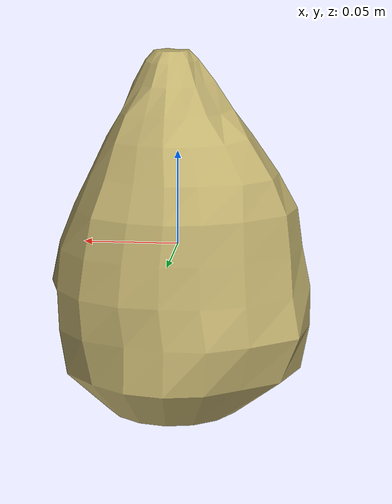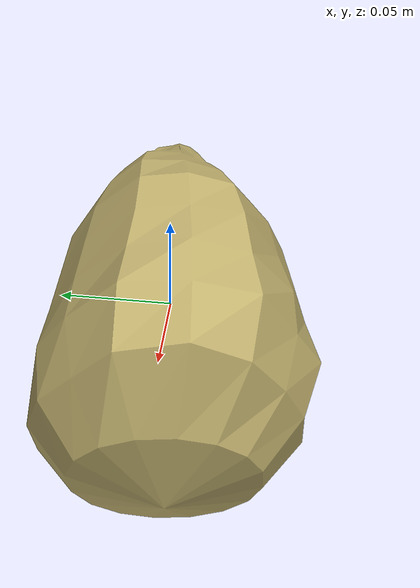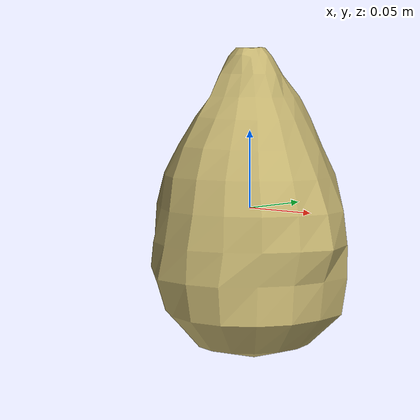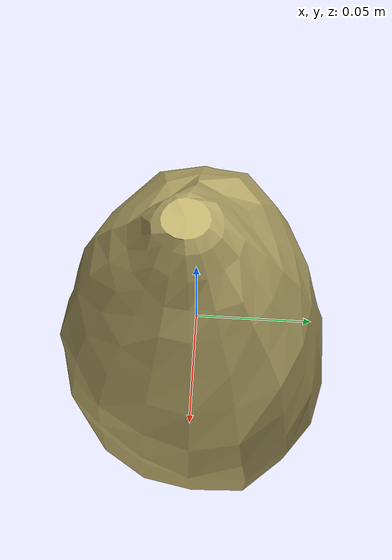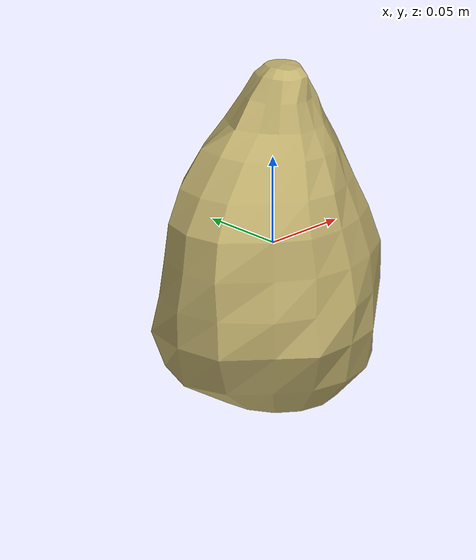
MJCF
<mujoco model="Lettuce_30">
  <compiler autolimits="true" boundmass="0.01" angle="radian"/>
  <default>
    <default class="/">
      <default class="__VISUAL_MJT__">
        <geom contype="0" conaffinity="0" group="0"/>
      </default>
      <default class="__STRUCTURAL_MJT__">
        <geom contype="8" conaffinity="15" group="4" friction="0.90000000000000002 0.90000000000000002 0.001" solref="0.025000000000000001 1" solimp="0.998 0.998 0.001"/>
      </default>
      <default class="__DYNAMIC_MJT__">
        <geom contype="1" conaffinity="15" group="4" friction="0.90000000000000002 0.90000000000000002 0.001" solref="0.025000000000000001 1" solimp="0.998 0.998 0.001"/>
      </default>
    </default>
  </default>
  <asset>
    <texture name="Lettuce3_Mat" type="2d" file="Lettuce3_AlbedoTransparency.png"/>
    <material name="material_Lettuce3_Mat" class="/" texture="Lettuce3_Mat" specular="0.5" shininess="0.5" rgba="1 0.95246359999999997 0.62735850000000004 1"/>
    <mesh name="Lettuce_30_lettuce_c10" class="/" file="Lettuce_30_lettuce_c10/Lettuce_30_lettuce_c10.obj" scale="1 1 1"/>
  </asset>
  <worldbody>
    <body name="Lettuce_30">
      <joint name="Lettuce_30_free" class="/" type="free" pos="0 0 0" axis="0 0 1" stiffness="0" range="0 0" armature="0" damping="0.10000000000000001" frictionloss="0"/>
      <body name="Lettuce_30_lettuce_c10" pos="-0.0012700000000000001 -0.0020699999999999998 0.00191" quat="1 0 0 0">
        <geom name="Lettuce_30_lettuce_c10" class="__VISUAL_MJT__" type="mesh" material="material_Lettuce3_Mat" shellinertia="true" mesh="Lettuce_30_lettuce_c10"/>
        <geom name="Lettuce_30_PrimitiveCollider_0" class="__DYNAMIC_MJT__" type="capsule" size="0.0646953284740448 0.015542104840278625" rgba="0 1 0 1" pos="-0.0023193629458546638 0.0020726565271615982 -0.023689918220043182" quat="7.1713115510397903e-17 0.99995960327903977 -0.0089884264487982216 0"/>
        <geom name="Lettuce_30_PrimitiveCollider_1" class="__DYNAMIC_MJT__" type="capsule" size="0.026384208351373672 1.0000000000000001e-05" rgba="0 1 0 1" pos="-0.0006848163902759552 -0.00035612564533948898 0.073713488876819611" quat="1.4751396609986736e-06 0.99999999999891198 0 0"/>
        <geom name="Lettuce_30_PrimitiveCollider_2" class="__DYNAMIC_MJT__" type="capsule" size="0.043312534689903259 0.0042309872806072235" rgba="0 1 0 1" pos="-0.0006848163902759552 0.00051899999380111694 0.034405551850795746" quat="1.4751396609986736e-06 0.99999999999891198 0 0"/>
      </body>
    </body>
  </worldbody>
</mujoco>
